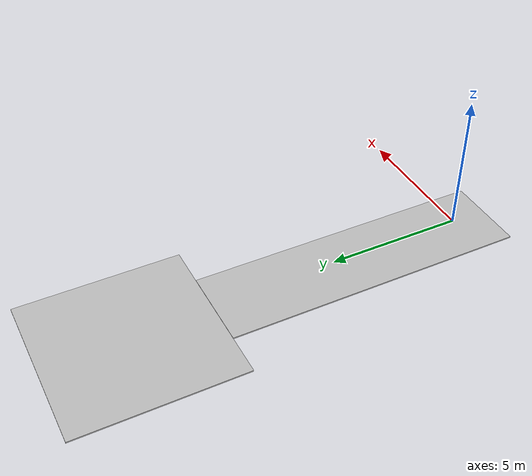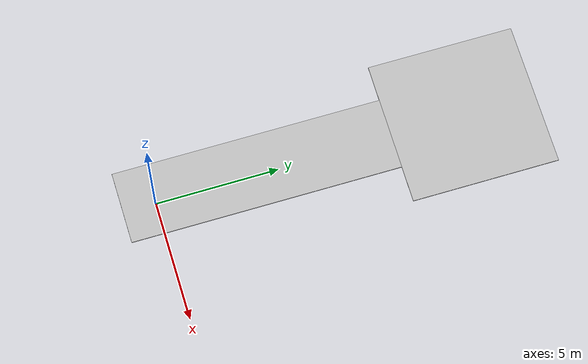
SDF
<sdf version="1.6">
 <world name="default">
  <light name="sun" type="directional">
   <pose>0 0 10 0 -0 0</pose>
   <diffuse>0.8 0.8 0.8 1</diffuse>
   <specular>0.2 0.2 0.2 1</specular>
   <attenuation>
    <range>1000</range>
    <constant>0.9</constant>
    <linear>0.01</linear>
    <quadratic>0.001</quadratic>
   </attenuation>
   <direction>-0.5 0.1 -0.9</direction>
  </light>
  <gravity>0 0 -9.8</gravity>
  <magnetic_field>6e-06 2.3e-05 -4.2e-05</magnetic_field>
  <atmosphere type="adiabatic"/>
  <physics name="default_physics" default="0" type="ode">
   <max_step_size>0.001</max_step_size>
   <real_time_factor>1</real_time_factor>
   <real_time_update_rate>1000</real_time_update_rate>
  </physics>
  <scene><ambient>0.4 0.4 0.4 1</ambient><background>0.7 0.7 0.7 1</background><shadows>1</shadows></scene>
  <audio><device>default</device></audio>
  <spherical_coordinates>
   <surface_model>EARTH_WGS84</surface_model>
   <latitude_deg>0</latitude_deg>
   <longitude_deg>0</longitude_deg>
   <elevation>0</elevation>
   <heading_deg>0</heading_deg>
  </spherical_coordinates>
  <model name="start_w400_black">
   <static>1</static>
   <link name="link">
    <collision name="collision">
     <geometry><box><size>11 3 0.05</size></box></geometry>
     <surface><friction><ode><mu>100</mu><mu2>50</mu2></ode></friction></surface>
    </collision>
    <visual name="visual">
     <cast_shadows>0</cast_shadows>
     <geometry><box><size>11 3 0.05</size></box></geometry>
     <material>
      <script>
       <uri>model://start_w400_black/materials/scripts</uri>
       <uri>model://start_w400_black/materials/textures/</uri>
       <name>start_w400_black/Image</name>
      </script>
     </material>
    </visual>
   </link>
   <pose>-0.193338 4.17342 0 0 -0 1.57079</pose>
  </model>
  <model name="left_curve_r300_a90_00">
   <static>1</static>
   <link name="link">
    <collision name="collision">
     <geometry><box><size>6 6 0.05</size></box></geometry>
     <surface><friction><ode><mu>100</mu><mu2>50</mu2></ode></friction></surface>
    </collision>
    <visual name="visual">
     <cast_shadows>0</cast_shadows>
     <geometry><box><size>6 6 0.05</size></box></geometry>
     <material>
      <script>
       <uri>model://left_curve_r300_a90_00/materials/scripts</uri>
       <uri>model://left_curve_r300_a90_00/materials/textures/</uri>
       <name>left_curve_r300_a90_00/Image</name>
      </script>
     </material>
    </visual>
   </link>
   <pose>-0.193023 12.674 -0.016667 0 -0 3.14159</pose>
  </model>
 </world>
</sdf>
